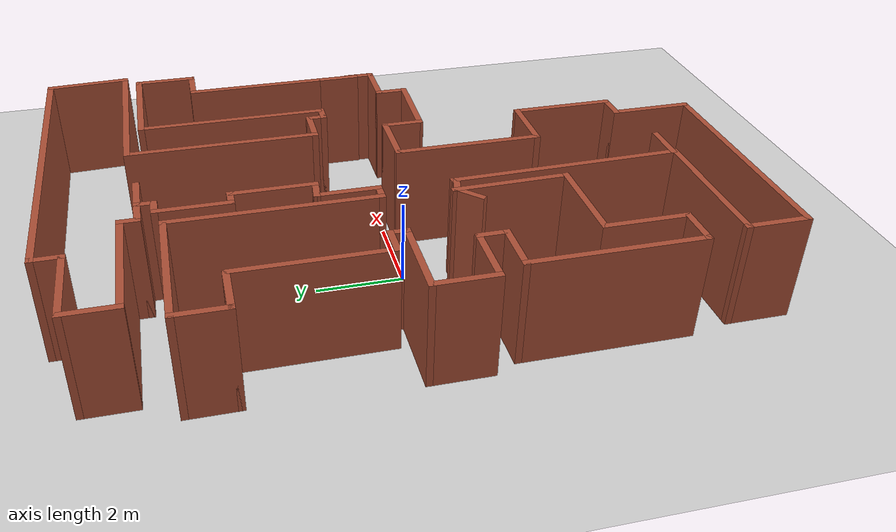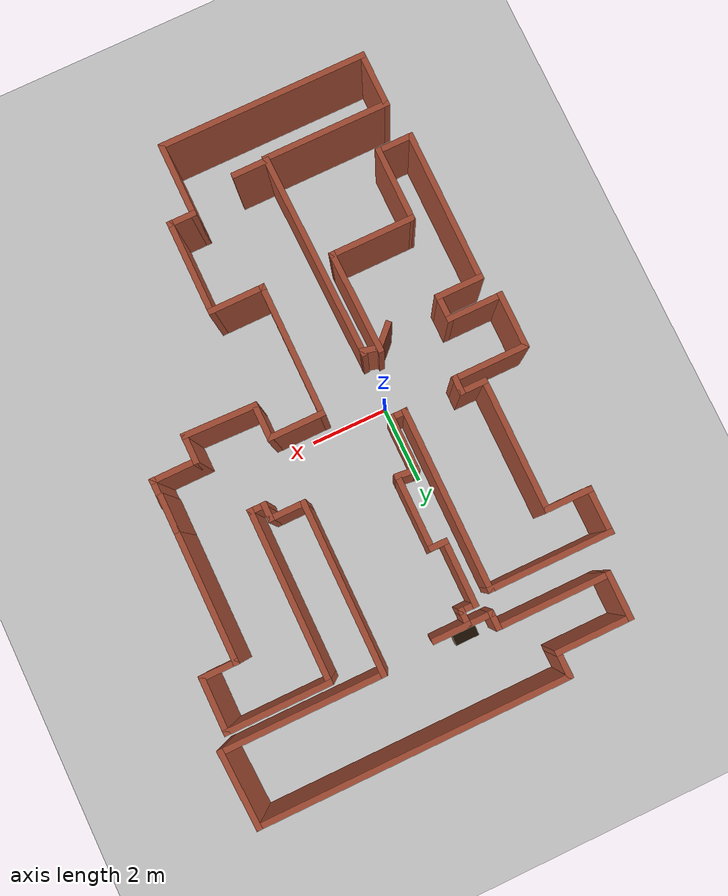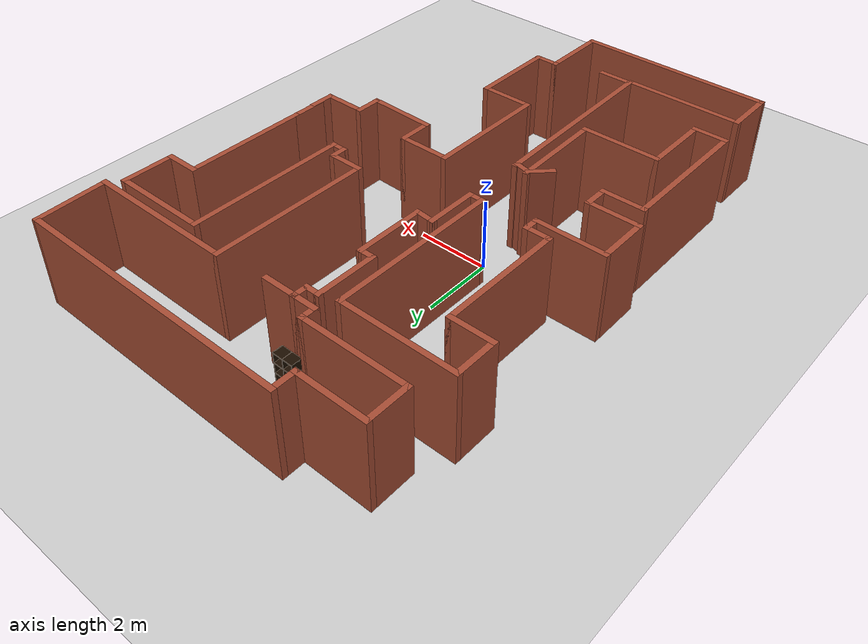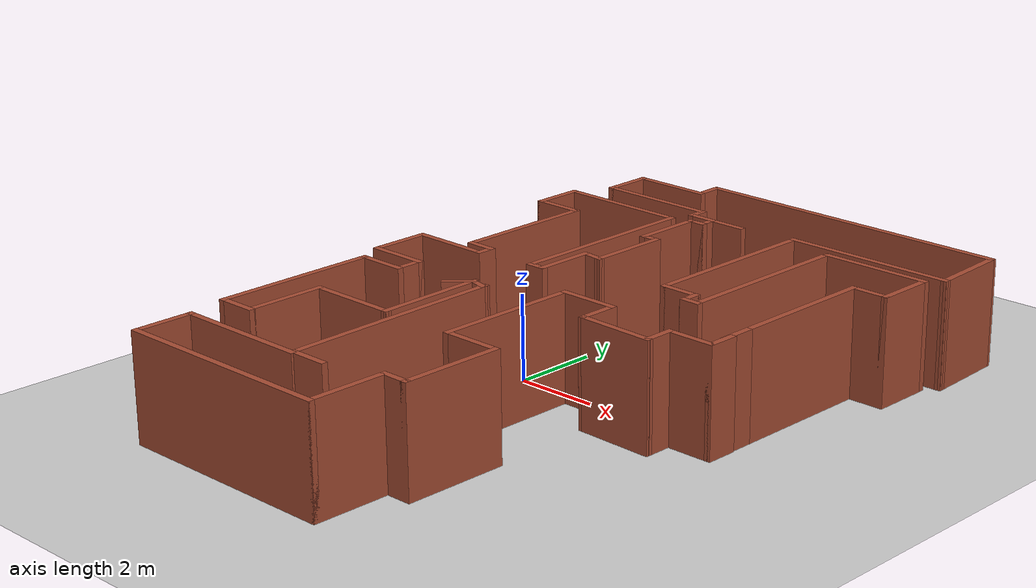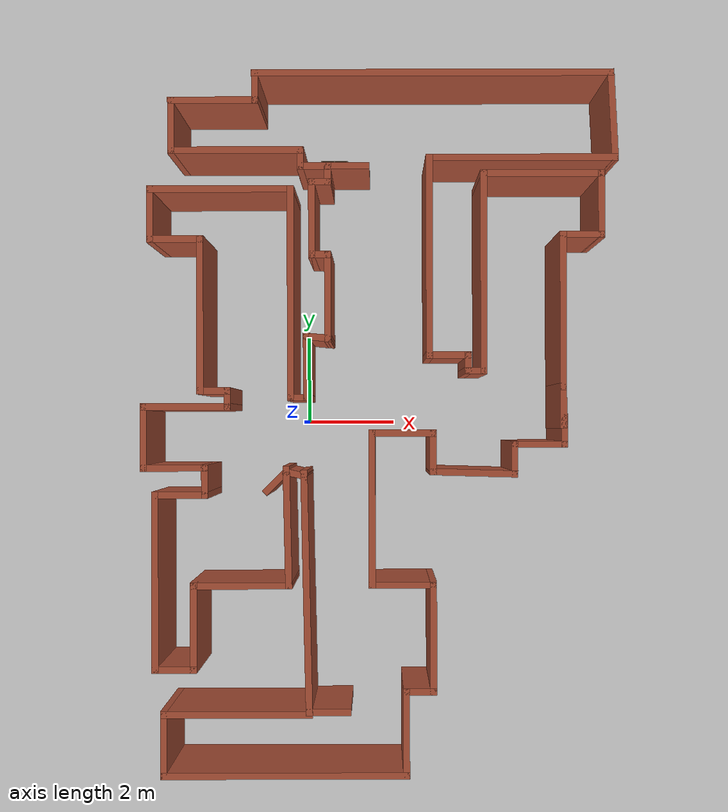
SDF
<sdf version="1.6">
 <world name="default">
  <model name="ground_plane">
   <static>1</static>
   <link name="link">
    <collision name="collision">
     <geometry><plane><normal>0 0 1</normal><size>100 100</size></plane></geometry>
     <surface>
      <contact><collide_bitmask>65535</collide_bitmask></contact>
      <friction><ode><mu>100</mu><mu2>50</mu2></ode></friction>
     </surface>
    </collision>
    <visual name="visual">
     <cast_shadows>0</cast_shadows>
     <geometry><plane><normal>0 0 1</normal><size>100 100</size></plane></geometry>
     <material>
      <script><uri>file://media/materials/scripts/gazebo.material</uri><name>Gazebo/Grey</name></script>
     </material>
    </visual>
   </link>
  </model>
  <model name="map_74">
   <pose>1.67527 -0.053097 0 0 -0 0</pose>
   <link name="Wall_0">
    <collision name="Wall_0_Collision">
     <geometry><box><size>8 0.15 2.5</size></box></geometry>
     <pose>0 0 1.25 0 -0 0</pose>
    </collision>
    <visual name="Wall_0_Visual">
     <pose>0 0 1.25 0 -0 0</pose>
     <geometry><box><size>8 0.15 2.5</size></box></geometry>
     <material>
      <script><uri>file://media/materials/scripts/gazebo.material</uri><name>Gazebo/Bricks</name></script>
      <ambient>1 1 1 1</ambient>
     </material>
     <meta><layer>0</layer></meta>
    </visual>
    <pose>1.18616 7.74572 0 0 -0 3.14159</pose>
   </link>
   <link name="Wall_1">
    <collision name="Wall_1_Collision">
     <geometry><box><size>0.75 0.15 2.5</size></box></geometry>
     <pose>0 0 1.25 0 -0 0</pose>
    </collision>
    <visual name="Wall_1_Visual">
     <pose>0 0 1.25 0 -0 0</pose>
     <geometry><box><size>0.75 0.15 2.5</size></box></geometry>
     <material>
      <script><uri>file://media/materials/scripts/gazebo.material</uri><name>Gazebo/Bricks</name></script>
      <ambient>1 1 1 1</ambient>
     </material>
     <meta><layer>0</layer></meta>
    </visual>
    <pose>-2.73884 7.44572 0 0 -0 -1.5708</pose>
   </link>
   <link name="Wall_10">
    <collision name="Wall_10_Collision">
     <geometry><box><size>0.5 0.15 2.5</size></box></geometry>
     <pose>0 0 1.25 0 -0 0</pose>
    </collision>
    <visual name="Wall_10_Visual">
     <pose>0 0 1.25 0 -0 0</pose>
     <geometry><box><size>0.5 0.15 2.5</size></box></geometry>
     <material>
      <script><uri>file://media/materials/scripts/gazebo.material</uri><name>Gazebo/Bricks</name></script>
      <ambient>1 1 1 1</ambient>
     </material>
     <meta><layer>0</layer></meta>
    </visual>
    <pose>-1.31384 5.34572 0 0 -0 3.14159</pose>
   </link>
   <link name="Wall_11">
    <collision name="Wall_11_Collision">
     <geometry><box><size>1.75 0.15 2.5</size></box></geometry>
     <pose>0 0 1.25 0 -0 0</pose>
    </collision>
    <visual name="Wall_11_Visual">
     <pose>0 0 1.25 0 -0 0</pose>
     <geometry><box><size>1.75 0.15 2.5</size></box></geometry>
     <material>
      <script><uri>file://media/materials/scripts/gazebo.material</uri><name>Gazebo/Bricks</name></script>
      <ambient>1 1 1 1</ambient>
     </material>
     <meta><layer>0</layer></meta>
    </visual>
    <pose>-1.48884 4.54572 0 0 -0 -1.5708</pose>
   </link>
   <link name="Wall_12">
    <collision name="Wall_12_Collision">
     <geometry><box><size>0.5 0.15 2.5</size></box></geometry>
     <pose>0 0 1.25 0 -0 0</pose>
    </collision>
    <visual name="Wall_12_Visual">
     <pose>0 0 1.25 0 -0 0</pose>
     <geometry><box><size>0.5 0.15 2.5</size></box></geometry>
     <material>
      <script><uri>file://media/materials/scripts/gazebo.material</uri><name>Gazebo/Bricks</name></script>
      <ambient>1 1 1 1</ambient>
     </material>
     <meta><layer>0</layer></meta>
    </visual>
    <pose>-1.31384 3.74572 0 0 -0 0</pose>
   </link>
   <link name="Wall_13">
    <collision name="Wall_13_Collision">
     <geometry><box><size>2 0.15 2.5</size></box></geometry>
     <pose>0 0 1.25 0 -0 0</pose>
    </collision>
    <visual name="Wall_13_Visual">
     <pose>0 0 1.25 0 -0 0</pose>
     <geometry><box><size>2 0.15 2.5</size></box></geometry>
     <material>
      <script><uri>file://media/materials/scripts/gazebo.material</uri><name>Gazebo/Bricks</name></script>
      <ambient>1 1 1 1</ambient>
     </material>
     <meta><layer>0</layer></meta>
    </visual>
    <pose>-1.13884 2.82072 0 0 -0 -1.5708</pose>
   </link>
   <link name="Wall_16">
    <collision name="Wall_16_Collision">
     <geometry><box><size>0.621345 0.15 2.5</size></box></geometry>
     <pose>0 0 1.25 0 -0 0</pose>
    </collision>
    <visual name="Wall_16_Visual">
     <pose>0 0 1.25 0 -0 0</pose>
     <geometry><box><size>0.621345 0.15 2.5</size></box></geometry>
     <material>
      <script><uri>file://media/materials/scripts/gazebo.material</uri><name>Gazebo/Bricks</name></script>
      <ambient>1 1 1 1</ambient>
     </material>
     <meta><layer>0</layer></meta>
    </visual>
    <pose>-1.37342 1.91847 0 0 -0 -0.096692</pose>
   </link>
   <link name="Wall_18">
    <collision name="Wall_18_Collision">
     <geometry><box><size>1.5 0.15 2.5</size></box></geometry>
     <pose>0 0 1.25 0 -0 0</pose>
    </collision>
    <visual name="Wall_18_Visual">
     <pose>0 0 1.25 0 -0 0</pose>
     <geometry><box><size>1.5 0.15 2.5</size></box></geometry>
     <material>
      <script><uri>file://media/materials/scripts/gazebo.material</uri><name>Gazebo/Bricks</name></script>
      <ambient>1 1 1 1</ambient>
     </material>
     <meta><layer>0</layer></meta>
    </visual>
    <pose>-1.60799 1.26623 0 0 -0 -1.5708</pose>
   </link>
   <link name="Wall_19">
    <collision name="Wall_19_Collision">
     <geometry><box><size>0.5 0.15 2.5</size></box></geometry>
     <pose>0 0 1.25 0 -0 0</pose>
    </collision>
    <visual name="Wall_19_Visual">
     <pose>0 0 1.25 0 -0 0</pose>
     <geometry><box><size>0.5 0.15 2.5</size></box></geometry>
     <material>
      <script><uri>file://media/materials/scripts/gazebo.material</uri><name>Gazebo/Bricks</name></script>
      <ambient>1 1 1 1</ambient>
     </material>
     <meta><layer>0</layer></meta>
    </visual>
    <pose>-1.78299 0.591226 0 0 -0 3.14159</pose>
   </link>
   <link name="Wall_2">
    <collision name="Wall_2_Collision">
     <geometry><box><size>2 0.15 2.5</size></box></geometry>
     <pose>0 0 1.25 0 -0 0</pose>
    </collision>
    <visual name="Wall_2_Visual">
     <pose>0 0 1.25 0 -0 0</pose>
     <geometry><box><size>2 0.15 2.5</size></box></geometry>
     <material>
      <script><uri>file://media/materials/scripts/gazebo.material</uri><name>Gazebo/Bricks</name></script>
      <ambient>1 1 1 1</ambient>
     </material>
     <meta><layer>0</layer></meta>
    </visual>
    <pose>-3.66384 7.14572 0 0 -0 3.14159</pose>
   </link>
   <link name="Wall_20">
    <collision name="Wall_20_Collision">
     <geometry><box><size>4.75 0.15 2.5</size></box></geometry>
     <pose>0 0 1.25 0 -0 0</pose>
    </collision>
    <visual name="Wall_20_Visual">
     <pose>0 0 1.25 0 -0 0</pose>
     <geometry><box><size>4.75 0.15 2.5</size></box></geometry>
     <material>
      <script><uri>file://media/materials/scripts/gazebo.material</uri><name>Gazebo/Bricks</name></script>
      <ambient>1 1 1 1</ambient>
     </material>
     <meta><layer>0</layer></meta>
    </visual>
    <pose>-1.95799 2.89123 0 0 -0 1.5708</pose>
   </link>
   <link name="Wall_21">
    <collision name="Wall_21_Collision">
     <geometry><box><size>3.25 0.15 2.5</size></box></geometry>
     <pose>0 0 1.25 0 -0 0</pose>
    </collision>
    <visual name="Wall_21_Visual">
     <pose>0 0 1.25 0 -0 0</pose>
     <geometry><box><size>3.25 0.15 2.5</size></box></geometry>
     <material>
      <script><uri>file://media/materials/scripts/gazebo.material</uri><name>Gazebo/Bricks</name></script>
      <ambient>1 1 1 1</ambient>
     </material>
     <meta><layer>0</layer></meta>
    </visual>
    <pose>-3.50799 5.19123 0 0 -0 3.14159</pose>
   </link>
   <link name="Wall_22">
    <collision name="Wall_22_Collision">
     <geometry><box><size>1.25 0.15 2.5</size></box></geometry>
     <pose>0 0 1.25 0 -0 0</pose>
    </collision>
    <visual name="Wall_22_Visual">
     <pose>0 0 1.25 0 -0 0</pose>
     <geometry><box><size>1.25 0.15 2.5</size></box></geometry>
     <material>
      <script><uri>file://media/materials/scripts/gazebo.material</uri><name>Gazebo/Bricks</name></script>
      <ambient>1 1 1 1</ambient>
     </material>
     <meta><layer>0</layer></meta>
    </visual>
    <pose>-5.05799 4.64123 0 0 -0 -1.5708</pose>
   </link>
   <link name="Wall_23">
    <collision name="Wall_23_Collision">
     <geometry><box><size>1.25 0.15 2.5</size></box></geometry>
     <pose>0 0 1.25 0 -0 0</pose>
    </collision>
    <visual name="Wall_23_Visual">
     <pose>0 0 1.25 0 -0 0</pose>
     <geometry><box><size>1.25 0.15 2.5</size></box></geometry>
     <material>
      <script><uri>file://media/materials/scripts/gazebo.material</uri><name>Gazebo/Bricks</name></script>
      <ambient>1 1 1 1</ambient>
     </material>
     <meta><layer>0</layer></meta>
    </visual>
    <pose>-4.50799 4.09123 0 0 -0 0</pose>
   </link>
   <link name="Wall_26">
    <collision name="Wall_26_Collision">
     <geometry><box><size>3.5 0.15 2.5</size></box></geometry>
     <pose>0 0 1.25 0 -0 0</pose>
    </collision>
    <visual name="Wall_26_Visual">
     <pose>0 0 1.25 0 -0 0</pose>
     <geometry><box><size>3.5 0.15 2.5</size></box></geometry>
     <material>
      <script><uri>file://media/materials/scripts/gazebo.material</uri><name>Gazebo/Bricks</name></script>
      <ambient>1 1 1 1</ambient>
     </material>
     <meta><layer>0</layer></meta>
    </visual>
    <pose>-3.95799 2.41623 0 0 -0 -1.5708</pose>
   </link>
   <link name="Wall_27">
    <collision name="Wall_27_Collision">
     <geometry><box><size>0.75 0.15 2.5</size></box></geometry>
     <pose>0 0 1.25 0 -0 0</pose>
    </collision>
    <visual name="Wall_27_Visual">
     <pose>0 0 1.25 0 -0 0</pose>
     <geometry><box><size>0.75 0.15 2.5</size></box></geometry>
     <material>
      <script><uri>file://media/materials/scripts/gazebo.material</uri><name>Gazebo/Bricks</name></script>
      <ambient>1 1 1 1</ambient>
     </material>
     <meta><layer>0</layer></meta>
    </visual>
    <pose>-3.65799 0.741226 0 0 -0 0</pose>
   </link>
   <link name="Wall_3">
    <collision name="Wall_3_Collision">
     <geometry><box><size>1.25 0.15 2.5</size></box></geometry>
     <pose>0 0 1.25 0 -0 0</pose>
    </collision>
    <visual name="Wall_3_Visual">
     <pose>0 0 1.25 0 -0 0</pose>
     <geometry><box><size>1.25 0.15 2.5</size></box></geometry>
     <material>
      <script><uri>file://media/materials/scripts/gazebo.material</uri><name>Gazebo/Bricks</name></script>
      <ambient>1 1 1 1</ambient>
     </material>
     <meta><layer>0</layer></meta>
    </visual>
    <pose>-4.58884 6.59572 0 0 -0 -1.5708</pose>
   </link>
   <link name="Wall_30">
    <collision name="Wall_30_Collision">
     <geometry><box><size>0.5 0.15 2.5</size></box></geometry>
     <pose>0 0 1.25 0 -0 0</pose>
    </collision>
    <visual name="Wall_30_Visual">
     <pose>0 0 1.25 0 -0 0</pose>
     <geometry><box><size>0.5 0.15 2.5</size></box></geometry>
     <material>
      <script><uri>file://media/materials/scripts/gazebo.material</uri><name>Gazebo/Bricks</name></script>
      <ambient>1 1 1 1</ambient>
     </material>
     <meta><layer>0</layer></meta>
    </visual>
    <pose>-3.35799 0.566226 0 0 -0 -1.5708</pose>
   </link>
   <link name="Wall_31">
    <collision name="Wall_31_Collision">
     <geometry><box><size>2 0.15 2.5</size></box></geometry>
     <pose>0 0 1.25 0 -0 0</pose>
    </collision>
    <visual name="Wall_31_Visual">
     <pose>0 0 1.25 0 -0 0</pose>
     <geometry><box><size>2 0.15 2.5</size></box></geometry>
     <material>
      <script><uri>file://media/materials/scripts/gazebo.material</uri><name>Gazebo/Bricks</name></script>
      <ambient>1 1 1 1</ambient>
     </material>
     <meta><layer>0</layer></meta>
    </visual>
    <pose>-4.28299 0.391226 0 0 -0 3.14159</pose>
   </link>
   <link name="Wall_32">
    <collision name="Wall_32_Collision">
     <geometry><box><size>1.5 0.15 2.5</size></box></geometry>
     <pose>0 0 1.25 0 -0 0</pose>
    </collision>
    <visual name="Wall_32_Visual">
     <pose>0 0 1.25 0 -0 0</pose>
     <geometry><box><size>1.5 0.15 2.5</size></box></geometry>
     <material>
      <script><uri>file://media/materials/scripts/gazebo.material</uri><name>Gazebo/Bricks</name></script>
      <ambient>1 1 1 1</ambient>
     </material>
     <meta><layer>0</layer></meta>
    </visual>
    <pose>-5.20799 -0.283774 0 0 -0 -1.5708</pose>
   </link>
   <link name="Wall_36">
    <collision name="Wall_36_Collision">
     <geometry><box><size>1.5 0.15 2.5</size></box></geometry>
     <pose>0 0 1.25 0 -0 0</pose>
    </collision>
    <visual name="Wall_36_Visual">
     <pose>0 0 1.25 0 -0 0</pose>
     <geometry><box><size>1.5 0.15 2.5</size></box></geometry>
     <material>
      <script><uri>file://media/materials/scripts/gazebo.material</uri><name>Gazebo/Bricks</name></script>
      <ambient>1 1 1 1</ambient>
     </material>
     <meta><layer>0</layer></meta>
    </visual>
    <pose>-4.53299 -0.958774 0 0 -0 0</pose>
   </link>
   <link name="Wall_37">
    <collision name="Wall_37_Collision">
     <geometry><box><size>0.75 0.15 2.5</size></box></geometry>
     <pose>0 0 1.25 0 -0 0</pose>
    </collision>
    <visual name="Wall_37_Visual">
     <pose>0 0 1.25 0 -0 0</pose>
     <geometry><box><size>0.75 0.15 2.5</size></box></geometry>
     <material>
      <script><uri>file://media/materials/scripts/gazebo.material</uri><name>Gazebo/Bricks</name></script>
      <ambient>1 1 1 1</ambient>
     </material>
     <meta><layer>0</layer></meta>
    </visual>
    <pose>-3.85799 -1.25877 0 0 -0 -1.5708</pose>
   </link>
   <link name="Wall_38">
    <collision name="Wall_38_Collision">
     <geometry><box><size>1.25 0.15 2.5</size></box></geometry>
     <pose>0 0 1.25 0 -0 0</pose>
    </collision>
    <visual name="Wall_38_Visual">
     <pose>0 0 1.25 0 -0 0</pose>
     <geometry><box><size>1.25 0.15 2.5</size></box></geometry>
     <material>
      <script><uri>file://media/materials/scripts/gazebo.material</uri><name>Gazebo/Bricks</name></script>
      <ambient>1 1 1 1</ambient>
     </material>
     <meta><layer>0</layer></meta>
    </visual>
    <pose>-4.40799 -1.55877 0 0 -0 3.14159</pose>
   </link>
   <link name="Wall_39">
    <collision name="Wall_39_Collision">
     <geometry><box><size>4 0.15 2.5</size></box></geometry>
     <pose>0 0 1.25 0 -0 0</pose>
    </collision>
    <visual name="Wall_39_Visual">
     <pose>0 0 1.25 0 -0 0</pose>
     <geometry><box><size>4 0.15 2.5</size></box></geometry>
     <material>
      <script><uri>file://media/materials/scripts/gazebo.material</uri><name>Gazebo/Bricks</name></script>
      <ambient>1 1 1 1</ambient>
     </material>
     <meta><layer>0</layer></meta>
    </visual>
    <pose>-4.95799 -3.48377 0 0 -0 -1.5708</pose>
   </link>
   <link name="Wall_40">
    <collision name="Wall_40_Collision">
     <geometry><box><size>1 0.15 2.5</size></box></geometry>
     <pose>0 0 1.25 0 -0 0</pose>
    </collision>
    <visual name="Wall_40_Visual">
     <pose>0 0 1.25 0 -0 0</pose>
     <geometry><box><size>1 0.15 2.5</size></box></geometry>
     <material>
      <script><uri>file://media/materials/scripts/gazebo.material</uri><name>Gazebo/Bricks</name></script>
      <ambient>1 1 1 1</ambient>
     </material>
     <meta><layer>0</layer></meta>
    </visual>
    <pose>-4.53299 -5.40877 0 0 -0 0</pose>
   </link>
   <link name="Wall_41">
    <collision name="Wall_41_Collision">
     <geometry><box><size>2 0.15 2.5</size></box></geometry>
     <pose>0 0 1.25 0 -0 0</pose>
    </collision>
    <visual name="Wall_41_Visual">
     <pose>0 0 1.25 0 -0 0</pose>
     <geometry><box><size>2 0.15 2.5</size></box></geometry>
     <material>
      <script><uri>file://media/materials/scripts/gazebo.material</uri><name>Gazebo/Bricks</name></script>
      <ambient>1 1 1 1</ambient>
     </material>
     <meta><layer>0</layer></meta>
    </visual>
    <pose>-4.10799 -4.48377 0 0 -0 1.5708</pose>
   </link>
   <link name="Wall_42">
    <collision name="Wall_42_Collision">
     <geometry><box><size>2.25 0.15 2.5</size></box></geometry>
     <pose>0 0 1.25 0 -0 0</pose>
    </collision>
    <visual name="Wall_42_Visual">
     <pose>0 0 1.25 0 -0 0</pose>
     <geometry><box><size>2.25 0.15 2.5</size></box></geometry>
     <material>
      <script><uri>file://media/materials/scripts/gazebo.material</uri><name>Gazebo/Bricks</name></script>
      <ambient>1 1 1 1</ambient>
     </material>
     <meta><layer>0</layer></meta>
    </visual>
    <pose>-3.05799 -3.55877 0 0 -0 0</pose>
   </link>
   <link name="Wall_43">
    <collision name="Wall_43_Collision">
     <geometry><box><size>2.71457 0.15 2.5</size></box></geometry>
     <pose>0 0 1.25 0 -0 0</pose>
    </collision>
    <visual name="Wall_43_Visual">
     <pose>0 0 1.25 0 -0 0</pose>
     <geometry><box><size>2.71457 0.15 2.5</size></box></geometry>
     <material>
      <script><uri>file://media/materials/scripts/gazebo.material</uri><name>Gazebo/Bricks</name></script>
      <ambient>1 1 1 1</ambient>
     </material>
     <meta><layer>0</layer></meta>
    </visual>
    <pose>-2.03474 -2.27677 0 0 -0 1.59166</pose>
   </link>
   <link name="Wall_44">
    <collision name="Wall_44_Collision">
     <geometry><box><size>0.551918 0.15 2.5</size></box></geometry>
     <pose>0 0 1.25 0 -0 0</pose>
    </collision>
    <visual name="Wall_44_Visual">
     <pose>0 0 1.25 0 -0 0</pose>
     <geometry><box><size>0.551918 0.15 2.5</size></box></geometry>
     <material>
      <script><uri>file://media/materials/scripts/gazebo.material</uri><name>Gazebo/Bricks</name></script>
      <ambient>1 1 1 1</ambient>
     </material>
     <meta><layer>0</layer></meta>
    </visual>
    <pose>-1.8657 -1.09356 0 0 -0 -0.227339</pose>
   </link>
   <link name="Wall_45">
    <collision name="Wall_45_Collision">
     <geometry><box><size>5.4116 0.15 2.5</size></box></geometry>
     <pose>0 0 1.25 0 -0 0</pose>
    </collision>
    <visual name="Wall_45_Visual">
     <pose>0 0 1.25 0 -0 0</pose>
     <geometry><box><size>5.4116 0.15 2.5</size></box></geometry>
     <material>
      <script><uri>file://media/materials/scripts/gazebo.material</uri><name>Gazebo/Bricks</name></script>
      <ambient>1 1 1 1</ambient>
     </material>
     <meta><layer>0</layer></meta>
    </visual>
    <pose>-1.61641 -3.7156 0 0 -0 -1.55046</pose>
   </link>
   <link name="Wall_46">
    <collision name="Wall_46_Collision">
     <geometry><box><size>3.35745 0.15 2.5</size></box></geometry>
     <pose>0 0 1.25 0 -0 0</pose>
    </collision>
    <visual name="Wall_46_Visual">
     <pose>0 0 1.25 0 -0 0</pose>
     <geometry><box><size>3.35745 0.15 2.5</size></box></geometry>
     <material>
      <script><uri>file://media/materials/scripts/gazebo.material</uri><name>Gazebo/Bricks</name></script>
      <ambient>1 1 1 1</ambient>
     </material>
     <meta><layer>0</layer></meta>
    </visual>
    <pose>-3.16641 -6.39936 0 0 -0 -3.14159</pose>
   </link>
   <link name="Wall_47">
    <collision name="Wall_47_Collision">
     <geometry><box><size>1.5 0.15 2.5</size></box></geometry>
     <pose>0 0 1.25 0 -0 0</pose>
    </collision>
    <visual name="Wall_47_Visual">
     <pose>0 0 1.25 0 -0 0</pose>
     <geometry><box><size>1.5 0.15 2.5</size></box></geometry>
     <material>
      <script><uri>file://media/materials/scripts/gazebo.material</uri><name>Gazebo/Bricks</name></script>
      <ambient>1 1 1 1</ambient>
     </material>
     <meta><layer>0</layer></meta>
    </visual>
    <pose>-4.76991 -7.07436 0 0 -0 -1.5708</pose>
   </link>
   <link name="Wall_48">
    <collision name="Wall_48_Collision">
     <geometry><box><size>5.5 0.15 2.5</size></box></geometry>
     <pose>0 0 1.25 0 -0 0</pose>
    </collision>
    <visual name="Wall_48_Visual">
     <pose>0 0 1.25 0 -0 0</pose>
     <geometry><box><size>5.5 0.15 2.5</size></box></geometry>
     <material>
      <script><uri>file://media/materials/scripts/gazebo.material</uri><name>Gazebo/Bricks</name></script>
      <ambient>1 1 1 1</ambient>
     </material>
     <meta><layer>0</layer></meta>
    </visual>
    <pose>-2.09491 -7.74936 0 0 -0 0</pose>
   </link>
   <link name="Wall_49">
    <collision name="Wall_49_Collision">
     <geometry><box><size>2 0.15 2.5</size></box></geometry>
     <pose>0 0 1.25 0 -0 0</pose>
    </collision>
    <visual name="Wall_49_Visual">
     <pose>0 0 1.25 0 -0 0</pose>
     <geometry><box><size>2 0.15 2.5</size></box></geometry>
     <material>
      <script><uri>file://media/materials/scripts/gazebo.material</uri><name>Gazebo/Bricks</name></script>
      <ambient>1 1 1 1</ambient>
     </material>
     <meta><layer>0</layer></meta>
    </visual>
    <pose>0.580086 -6.82436 0 0 -0 1.5708</pose>
   </link>
   <link name="Wall_50">
    <collision name="Wall_50_Collision">
     <geometry><box><size>0.75 0.15 2.5</size></box></geometry>
     <pose>0 0 1.25 0 -0 0</pose>
    </collision>
    <visual name="Wall_50_Visual">
     <pose>0 0 1.25 0 -0 0</pose>
     <geometry><box><size>0.75 0.15 2.5</size></box></geometry>
     <material>
      <script><uri>file://media/materials/scripts/gazebo.material</uri><name>Gazebo/Bricks</name></script>
      <ambient>1 1 1 1</ambient>
     </material>
     <meta><layer>0</layer></meta>
    </visual>
    <pose>0.880086 -5.89936 0 0 -0 0</pose>
   </link>
   <link name="Wall_51">
    <collision name="Wall_51_Collision">
     <geometry><box><size>2.5 0.15 2.5</size></box></geometry>
     <pose>0 0 1.25 0 -0 0</pose>
    </collision>
    <visual name="Wall_51_Visual">
     <pose>0 0 1.25 0 -0 0</pose>
     <geometry><box><size>2.5 0.15 2.5</size></box></geometry>
     <material>
      <script><uri>file://media/materials/scripts/gazebo.material</uri><name>Gazebo/Bricks</name></script>
      <ambient>1 1 1 1</ambient>
     </material>
     <meta><layer>0</layer></meta>
    </visual>
    <pose>1.18009 -4.72436 0 0 -0 1.5708</pose>
   </link>
   <link name="Wall_52">
    <collision name="Wall_52_Collision">
     <geometry><box><size>1.5 0.15 2.5</size></box></geometry>
     <pose>0 0 1.25 0 -0 0</pose>
    </collision>
    <visual name="Wall_52_Visual">
     <pose>0 0 1.25 0 -0 0</pose>
     <geometry><box><size>1.5 0.15 2.5</size></box></geometry>
     <material>
      <script><uri>file://media/materials/scripts/gazebo.material</uri><name>Gazebo/Bricks</name></script>
      <ambient>1 1 1 1</ambient>
     </material>
     <meta><layer>0</layer></meta>
    </visual>
    <pose>0.505086 -3.54936 0 0 -0 3.14159</pose>
   </link>
   <link name="Wall_53">
    <collision name="Wall_53_Collision">
     <geometry><box><size>3.5 0.15 2.5</size></box></geometry>
     <pose>0 0 1.25 0 -0 0</pose>
    </collision>
    <visual name="Wall_53_Visual">
     <pose>0 0 1.25 0 -0 0</pose>
     <geometry><box><size>3.5 0.15 2.5</size></box></geometry>
     <material>
      <script><uri>file://media/materials/scripts/gazebo.material</uri><name>Gazebo/Bricks</name></script>
      <ambient>1 1 1 1</ambient>
     </material>
     <meta><layer>0</layer></meta>
    </visual>
    <pose>-0.169914 -1.87436 0 0 -0 1.5708</pose>
   </link>
   <link name="Wall_54">
    <collision name="Wall_54_Collision">
     <geometry><box><size>1.5 0.15 2.5</size></box></geometry>
     <pose>0 0 1.25 0 -0 0</pose>
    </collision>
    <visual name="Wall_54_Visual">
     <pose>0 0 1.25 0 -0 0</pose>
     <geometry><box><size>1.5 0.15 2.5</size></box></geometry>
     <material>
      <script><uri>file://media/materials/scripts/gazebo.material</uri><name>Gazebo/Bricks</name></script>
      <ambient>1 1 1 1</ambient>
     </material>
     <meta><layer>0</layer></meta>
    </visual>
    <pose>0.505086 -0.199361 0 0 -0 0</pose>
   </link>
   <link name="Wall_55">
    <collision name="Wall_55_Collision">
     <geometry><box><size>1 0.15 2.5</size></box></geometry>
     <pose>0 0 1.25 0 -0 0</pose>
    </collision>
    <visual name="Wall_55_Visual">
     <pose>0 0 1.25 0 -0 0</pose>
     <geometry><box><size>1 0.15 2.5</size></box></geometry>
     <material>
      <script><uri>file://media/materials/scripts/gazebo.material</uri><name>Gazebo/Bricks</name></script>
      <ambient>1 1 1 1</ambient>
     </material>
     <meta><layer>0</layer></meta>
    </visual>
    <pose>1.18009 -0.624361 0 0 -0 -1.5708</pose>
   </link>
   <link name="Wall_59">
    <collision name="Wall_59_Collision">
     <geometry><box><size>1.94729 0.15 2.5</size></box></geometry>
     <pose>0 0 1.25 0 -0 0</pose>
    </collision>
    <visual name="Wall_59_Visual">
     <pose>0 0 1.25 0 -0 0</pose>
     <geometry><box><size>1.94729 0.15 2.5</size></box></geometry>
     <material>
      <script><uri>file://media/materials/scripts/gazebo.material</uri><name>Gazebo/Bricks</name></script>
      <ambient>1 1 1 1</ambient>
     </material>
     <meta><layer>0</layer></meta>
    </visual>
    <pose>2.07834 -1.07611 0 0 -0 -0.029773</pose>
   </link>
   <link name="Wall_6">
    <collision name="Wall_6_Collision">
     <geometry><box><size>3 0.15 2.5</size></box></geometry>
     <pose>0 0 1.25 0 -0 0</pose>
    </collision>
    <visual name="Wall_6_Visual">
     <pose>0 0 1.25 0 -0 0</pose>
     <geometry><box><size>3 0.15 2.5</size></box></geometry>
     <material>
      <script><uri>file://media/materials/scripts/gazebo.material</uri><name>Gazebo/Bricks</name></script>
      <ambient>1 1 1 1</ambient>
     </material>
     <meta><layer>0</layer></meta>
    </visual>
    <pose>-3.16384 6.04572 0 0 -0 0</pose>
   </link>
   <link name="Wall_60">
    <collision name="Wall_60_Collision">
     <geometry><box><size>0.75 0.15 2.5</size></box></geometry>
     <pose>0 0 1.25 0 -0 0</pose>
    </collision>
    <visual name="Wall_60_Visual">
     <pose>0 0 1.25 0 -0 0</pose>
     <geometry><box><size>0.75 0.15 2.5</size></box></geometry>
     <material>
      <script><uri>file://media/materials/scripts/gazebo.material</uri><name>Gazebo/Bricks</name></script>
      <ambient>1 1 1 1</ambient>
     </material>
     <meta><layer>0</layer></meta>
    </visual>
    <pose>2.97658 -0.749361 0 0 -0 1.5708</pose>
   </link>
   <link name="Wall_63">
    <collision name="Wall_63_Collision">
     <geometry><box><size>1 0.15 2.5</size></box></geometry>
     <pose>0 0 1.25 0 -0 0</pose>
    </collision>
    <visual name="Wall_63_Visual">
     <pose>0 0 1.25 0 -0 0</pose>
     <geometry><box><size>1 0.15 2.5</size></box></geometry>
     <material>
      <script><uri>file://media/materials/scripts/gazebo.material</uri><name>Gazebo/Bricks</name></script>
      <ambient>1 1 1 1</ambient>
     </material>
     <meta><layer>0</layer></meta>
    </visual>
    <pose>4.05435 0.399903 0 0 -0 1.5708</pose>
   </link>
   <link name="Wall_64">
    <collision name="Wall_64_Collision">
     <geometry><box><size>3.5 0.15 2.5</size></box></geometry>
     <pose>0 0 1.25 0 -0 0</pose>
    </collision>
    <visual name="Wall_64_Visual">
     <pose>0 0 1.25 0 -0 0</pose>
     <geometry><box><size>3.5 0.15 2.5</size></box></geometry>
     <material>
      <script><uri>file://media/materials/scripts/gazebo.material</uri><name>Gazebo/Bricks</name></script>
      <ambient>1 1 1 1</ambient>
     </material>
     <meta><layer>0</layer></meta>
    </visual>
    <pose>4.05435 2.4999 0 0 -0 1.5708</pose>
   </link>
   <link name="Wall_65">
    <collision name="Wall_65_Collision">
     <geometry><box><size>1 0.15 2.5</size></box></geometry>
     <pose>0 0 1.25 0 -0 0</pose>
    </collision>
    <visual name="Wall_65_Visual">
     <pose>0 0 1.25 0 -0 0</pose>
     <geometry><box><size>1 0.15 2.5</size></box></geometry>
     <material>
      <script><uri>file://media/materials/scripts/gazebo.material</uri><name>Gazebo/Bricks</name></script>
      <ambient>1 1 1 1</ambient>
     </material>
     <meta><layer>0</layer></meta>
    </visual>
    <pose>4.47935 4.1749 0 0 -0 0</pose>
   </link>
   <link name="Wall_66">
    <collision name="Wall_66_Collision">
     <geometry><box><size>1.5 0.15 2.5</size></box></geometry>
     <pose>0 0 1.25 0 -0 0</pose>
    </collision>
    <visual name="Wall_66_Visual">
     <pose>0 0 1.25 0 -0 0</pose>
     <geometry><box><size>1.5 0.15 2.5</size></box></geometry>
     <material>
      <script><uri>file://media/materials/scripts/gazebo.material</uri><name>Gazebo/Bricks</name></script>
      <ambient>1 1 1 1</ambient>
     </material>
     <meta><layer>0</layer></meta>
    </visual>
    <pose>4.90435 4.8499 0 0 -0 1.5708</pose>
   </link>
   <link name="Wall_67">
    <collision name="Wall_67_Collision">
     <geometry><box><size>2.75 0.15 2.5</size></box></geometry>
     <pose>0 0 1.25 0 -0 0</pose>
    </collision>
    <visual name="Wall_67_Visual">
     <pose>0 0 1.25 0 -0 0</pose>
     <geometry><box><size>2.75 0.15 2.5</size></box></geometry>
     <material>
      <script><uri>file://media/materials/scripts/gazebo.material</uri><name>Gazebo/Bricks</name></script>
      <ambient>1 1 1 1</ambient>
     </material>
     <meta><layer>0</layer></meta>
    </visual>
    <pose>3.60435 5.5249 0 0 -0 3.14159</pose>
   </link>
   <link name="Wall_68">
    <collision name="Wall_68_Collision">
     <geometry><box><size>4.5 0.15 2.5</size></box></geometry>
     <pose>0 0 1.25 0 -0 0</pose>
    </collision>
    <visual name="Wall_68_Visual">
     <pose>0 0 1.25 0 -0 0</pose>
     <geometry><box><size>4.5 0.15 2.5</size></box></geometry>
     <material>
      <script><uri>file://media/materials/scripts/gazebo.material</uri><name>Gazebo/Bricks</name></script>
      <ambient>1 1 1 1</ambient>
     </material>
     <meta><layer>0</layer></meta>
    </visual>
    <pose>2.30435 3.3499 0 0 -0 -1.5708</pose>
   </link>
   <link name="Wall_69">
    <collision name="Wall_69_Collision">
     <geometry><box><size>0.5 0.15 2.5</size></box></geometry>
     <pose>0 0 1.25 0 -0 0</pose>
    </collision>
    <visual name="Wall_69_Visual">
     <pose>0 0 1.25 0 -0 0</pose>
     <geometry><box><size>0.5 0.15 2.5</size></box></geometry>
     <material>
      <script><uri>file://media/materials/scripts/gazebo.material</uri><name>Gazebo/Bricks</name></script>
      <ambient>1 1 1 1</ambient>
     </material>
     <meta><layer>0</layer></meta>
    </visual>
    <pose>2.12935 1.1749 0 0 -0 3.14159</pose>
   </link>
   <link name="Wall_7">
    <collision name="Wall_7_Collision">
     <geometry><box><size>0.5 0.15 2.5</size></box></geometry>
     <pose>0 0 1.25 0 -0 0</pose>
    </collision>
    <visual name="Wall_7_Visual">
     <pose>0 0 1.25 0 -0 0</pose>
     <geometry><box><size>0.5 0.15 2.5</size></box></geometry>
     <material>
      <script><uri>file://media/materials/scripts/gazebo.material</uri><name>Gazebo/Bricks</name></script>
      <ambient>1 1 1 1</ambient>
     </material>
     <meta><layer>0</layer></meta>
    </visual>
    <pose>-1.73884 5.87072 0 0 -0 -1.5708</pose>
   </link>
   <link name="Wall_70">
    <collision name="Wall_70_Collision">
     <geometry><box><size>0.5 0.15 2.5</size></box></geometry>
     <pose>0 0 1.25 0 -0 0</pose>
    </collision>
    <visual name="Wall_70_Visual">
     <pose>0 0 1.25 0 -0 0</pose>
     <geometry><box><size>0.5 0.15 2.5</size></box></geometry>
     <material>
      <script><uri>file://media/materials/scripts/gazebo.material</uri><name>Gazebo/Bricks</name></script>
      <ambient>1 1 1 1</ambient>
     </material>
     <meta><layer>0</layer></meta>
    </visual>
    <pose>1.95435 1.3499 0 0 -0 1.5708</pose>
   </link>
   <link name="Wall_71">
    <collision name="Wall_71_Collision">
     <geometry><box><size>1 0.15 2.5</size></box></geometry>
     <pose>0 0 1.25 0 -0 0</pose>
    </collision>
    <visual name="Wall_71_Visual">
     <pose>0 0 1.25 0 -0 0</pose>
     <geometry><box><size>1 0.15 2.5</size></box></geometry>
     <material>
      <script><uri>file://media/materials/scripts/gazebo.material</uri><name>Gazebo/Bricks</name></script>
      <ambient>1 1 1 1</ambient>
     </material>
     <meta><layer>0</layer></meta>
    </visual>
    <pose>1.52935 1.5249 0 0 -0 3.14159</pose>
   </link>
   <link name="Wall_72">
    <collision name="Wall_72_Collision">
     <geometry><box><size>4.5 0.15 2.5</size></box></geometry>
     <pose>0 0 1.25 0 -0 0</pose>
    </collision>
    <visual name="Wall_72_Visual">
     <pose>0 0 1.25 0 -0 0</pose>
     <geometry><box><size>4.5 0.15 2.5</size></box></geometry>
     <material>
      <script><uri>file://media/materials/scripts/gazebo.material</uri><name>Gazebo/Bricks</name></script>
      <ambient>1 1 1 1</ambient>
     </material>
     <meta><layer>0</layer></meta>
    </visual>
    <pose>1.10435 3.6999 0 0 -0 1.5708</pose>
   </link>
   <link name="Wall_73">
    <collision name="Wall_73_Collision">
     <geometry><box><size>4.25 0.15 2.5</size></box></geometry>
     <pose>0 0 1.25 0 -0 0</pose>
    </collision>
    <visual name="Wall_73_Visual">
     <pose>0 0 1.25 0 -0 0</pose>
     <geometry><box><size>4.25 0.15 2.5</size></box></geometry>
     <material>
      <script><uri>file://media/materials/scripts/gazebo.material</uri><name>Gazebo/Bricks</name></script>
      <ambient>1 1 1 1</ambient>
     </material>
     <meta><layer>0</layer></meta>
    </visual>
    <pose>3.15435 5.8749 0 0 -0 0</pose>
   </link>
   <link name="Wall_74">
    <collision name="Wall_74_Collision">
     <geometry><box><size>2.02314 0.15 2.5</size></box></geometry>
     <pose>0 0 1.25 0 -0 0</pose>
    </collision>
    <visual name="Wall_74_Visual">
     <pose>0 0 1.25 0 -0 0</pose>
     <geometry><box><size>2.02314 0.15 2.5</size></box></geometry>
     <material>
      <script><uri>file://media/materials/scripts/gazebo.material</uri><name>Gazebo/Bricks</name></script>
      <ambient>1 1 1 1</ambient>
     </material>
     <meta><layer>0</layer></meta>
    </visual>
    <pose>5.15775 6.81031 0 0 -0 1.62057</pose>
   </link>
   <link name="Wall_76">
    <collision name="Wall_76_Collision">
     <geometry><box><size>1 0.15 2.5</size></box></geometry>
     <pose>0 0 1.25 0 -0 0</pose>
    </collision>
    <visual name="Wall_76_Visual">
     <pose>0 0 1.25 0 -0 0</pose>
     <geometry><box><size>1 0.15 2.5</size></box></geometry>
     <material>
      <script><uri>file://media/materials/scripts/gazebo.material</uri><name>Gazebo/Bricks</name></script>
      <ambient>1 1 1 1</ambient>
     </material>
     <meta><layer>0</layer></meta>
    </visual>
    <pose>-1.13791 -6.34586 0 0 -0 0</pose>
   </link>
   <link name="Wall_78">
    <collision name="Wall_78_Collision">
     <geometry><box><size>0.75 0.15 2.5</size></box></geometry>
     <pose>0 0 1.25 0 -0 0</pose>
    </collision>
    <visual name="Wall_78_Visual">
     <pose>0 0 1.25 0 -0 0</pose>
     <geometry><box><size>0.75 0.15 2.5</size></box></geometry>
     <material>
      <script><uri>file://media/materials/scripts/gazebo.material</uri><name>Gazebo/Bricks</name></script>
      <ambient>1 1 1 1</ambient>
     </material>
     <meta><layer>0</layer></meta>
    </visual>
    <pose>-2.27362 -1.2604 0 0 -0 -2.35619</pose>
   </link>
   <link name="Wall_8">
    <collision name="Wall_8_Collision">
     <geometry><box><size>0.75 0.15 2.5</size></box></geometry>
     <pose>0 0 1.25 0 -0 0</pose>
    </collision>
    <visual name="Wall_8_Visual">
     <pose>0 0 1.25 0 -0 0</pose>
     <geometry><box><size>0.75 0.15 2.5</size></box></geometry>
     <material>
      <script><uri>file://media/materials/scripts/gazebo.material</uri><name>Gazebo/Bricks</name></script>
      <ambient>1 1 1 1</ambient>
     </material>
     <meta><layer>0</layer></meta>
    </visual>
    <pose>-1.43884 5.69572 0 0 -0 0</pose>
   </link>
   <link name="Wall_80">
    <collision name="Wall_80_Collision">
     <geometry><box><size>1.25 0.15 2.5</size></box></geometry>
     <pose>0 0 1.25 0 -0 0</pose>
    </collision>
    <visual name="Wall_80_Visual">
     <pose>0 0 1.25 0 -0 0</pose>
     <geometry><box><size>1.25 0.15 2.5</size></box></geometry>
     <material>
      <script><uri>file://media/materials/scripts/gazebo.material</uri><name>Gazebo/Bricks</name></script>
      <ambient>1 1 1 1</ambient>
     </material>
     <meta><layer>0</layer></meta>
    </visual>
    <pose>3.52658 -0.449361 0 0 -0 0</pose>
   </link>
   <link name="Wall_81">
    <collision name="Wall_81_Collision">
     <geometry><box><size>0.75 0.15 2.5</size></box></geometry>
     <pose>0 0 1.25 0 -0 0</pose>
    </collision>
    <visual name="Wall_81_Visual">
     <pose>0 0 1.25 0 -0 0</pose>
     <geometry><box><size>0.75 0.15 2.5</size></box></geometry>
     <material>
      <script><uri>file://media/materials/scripts/gazebo.material</uri><name>Gazebo/Bricks</name></script>
      <ambient>1 1 1 1</ambient>
     </material>
     <meta><layer>0</layer></meta>
    </visual>
    <pose>4.07658 -0.149361 0 0 -0 1.5708</pose>
   </link>
   <link name="Wall_83">
    <collision name="Wall_83_Collision">
     <geometry><box><size>1 0.15 2.5</size></box></geometry>
     <pose>0 0 1.25 0 -0 0</pose>
    </collision>
    <visual name="Wall_83_Visual">
     <pose>0 0 1.25 0 -0 0</pose>
     <geometry><box><size>1 0.15 2.5</size></box></geometry>
     <material>
      <script><uri>file://media/materials/scripts/gazebo.material</uri><name>Gazebo/Bricks</name></script>
      <ambient>1 1 1 1</ambient>
     </material>
     <meta><layer>0</layer></meta>
    </visual>
    <pose>-0.713844 5.69572 0 0 -0 0</pose>
   </link>
   <link name="Wall_9">
    <collision name="Wall_9_Collision">
     <geometry><box><size>0.5 0.15 2.5</size></box></geometry>
     <pose>0 0 1.25 0 -0 0</pose>
    </collision>
    <visual name="Wall_9_Visual">
     <pose>0 0 1.25 0 -0 0</pose>
     <geometry><box><size>0.5 0.15 2.5</size></box></geometry>
     <material>
      <script><uri>file://media/materials/scripts/gazebo.material</uri><name>Gazebo/Bricks</name></script>
      <ambient>1 1 1 1</ambient>
     </material>
     <meta><layer>0</layer></meta>
    </visual>
    <pose>-1.13884 5.52072 0 0 -0 -1.5708</pose>
   </link>
   <static>1</static>
  </model>
  <model name="6_Cube_StorageE_3">
   <link name="Wall_0">
    <pose>0 0 0.01 0 -0 0</pose>
    <inertial>
     <mass>1.6201</mass>
     <inertia><ixx>0.0119</ixx><iyy>0.0631</iyy><izz>0.0513</izz><ixy>0</ixy><ixz>0</ixz><iyz>0</iyz></inertia>
    </inertial>
    <collision name="Wall_0_Collision"><geometry><box><size>0.616 0.296 0.02</size></box></geometry></collision>
    <visual name="Wall_0_Visual">
     <geometry><box><size>0.616 0.296 0.02</size></box></geometry>
     <material>
      <script><uri>file://media/materials/scripts/gazebo.material</uri><name>Gazebo/Grey</name></script>
      <ambient>0.105882 0.0509804 0 1</ambient>
     </material>
    </visual>
   </link>
   <joint name="0_2" type="fixed">
    <pose>-0.308 0 0 0 -0 0</pose>
    <parent>Wall_2</parent>
    <child>Wall_0</child>
    <axis>
     <xyz>1 0 0</xyz>
     <use_parent_model_frame>0</use_parent_model_frame>
     <limit><lower>-1e+16</lower><upper>1e+16</upper></limit>
    </axis>
   </joint>
   <joint name="0_12" type="fixed">
    <parent>Wall_12</parent>
    <child>Wall_0</child>
    <axis>
     <xyz>0 0 1</xyz>
     <use_parent_model_frame>0</use_parent_model_frame>
     <limit><lower>-1e+16</lower><upper>1e+16</upper></limit>
    </axis>
   </joint>
   <joint name="0_4" type="fixed">
    <pose>0.308 0 0 0 -0 0</pose>
    <parent>Wall_4</parent>
    <child>Wall_0</child>
    <axis>
     <xyz>1 0 0</xyz>
     <use_parent_model_frame>0</use_parent_model_frame>
     <limit><lower>-1e+16</lower><upper>1e+16</upper></limit>
    </axis>
   </joint>
   <link name="Wall_10">
    <pose>0 0 0.61 0 -0 0</pose>
    <inertial>
     <mass>1.6201</mass>
     <inertia><ixx>0.0119</ixx><iyy>0.0631</iyy><izz>0.0513</izz><ixy>0</ixy><ixz>0</ixz><iyz>0</iyz></inertia>
    </inertial>
    <collision name="Wall_10_Collision"><geometry><box><size>0.616 0.296 0.02</size></box></geometry></collision>
    <visual name="Wall_10_Visual">
     <geometry><box><size>0.616 0.296 0.02</size></box></geometry>
     <material>
      <script><uri>file://media/materials/scripts/gazebo.material</uri><name>Gazebo/Grey</name></script>
      <ambient>0.105882 0.0509804 0 1</ambient>
     </material>
    </visual>
   </link>
   <joint name="10_2" type="fixed">
    <pose>-0.308 0 0 0 -0 0</pose>
    <parent>Wall_2</parent>
    <child>Wall_10</child>
    <axis>
     <xyz>1 0 0</xyz>
     <use_parent_model_frame>0</use_parent_model_frame>
     <limit><lower>-1e+16</lower><upper>1e+16</upper></limit>
    </axis>
   </joint>
   <joint name="10_12" type="fixed">
    <parent>Wall_12</parent>
    <child>Wall_10</child>
    <axis>
     <xyz>0 0 1</xyz>
     <use_parent_model_frame>0</use_parent_model_frame>
     <limit><lower>-1e+16</lower><upper>1e+16</upper></limit>
    </axis>
   </joint>
   <joint name="10_4" type="fixed">
    <pose>0.308 0 0 0 -0 0</pose>
    <parent>Wall_4</parent>
    <child>Wall_10</child>
    <axis>
     <xyz>1 0 0</xyz>
     <use_parent_model_frame>0</use_parent_model_frame>
     <limit><lower>-1e+16</lower><upper>1e+16</upper></limit>
    </axis>
   </joint>
   <link name="Wall_12">
    <pose>0 0 0.4575 0 -0 0</pose>
    <inertial>
     <mass>2.4065</mass>
     <inertia><ixx>0.0177</ixx><iyy>0.1855</iyy><izz>0.168</izz><ixy>0</ixy><ixz>0</ixz><iyz>0</iyz></inertia>
    </inertial>
    <collision name="Wall_12_Collision"><geometry><box><size>0.02 0.296 0.915</size></box></geometry></collision>
    <visual name="Wall_12_Visual">
     <geometry><box><size>0.02 0.296 0.915</size></box></geometry>
     <material>
      <script><uri>file://media/materials/scripts/gazebo.material</uri><name>Gazebo/Grey</name></script>
      <ambient>0.105882 0.0509804 0 1</ambient>
     </material>
    </visual>
   </link>
   <link name="Wall_2">
    <pose>-0.298 0 0.4575 0 -0 0</pose>
    <inertial>
     <mass>2.4065</mass>
     <inertia><ixx>0.0177</ixx><iyy>0.1855</iyy><izz>0.168</izz><ixy>0</ixy><ixz>0</ixz><iyz>0</iyz></inertia>
    </inertial>
    <collision name="Wall_2_Collision"><geometry><box><size>0.02 0.296 0.915</size></box></geometry></collision>
    <visual name="Wall_2_Visual">
     <geometry><box><size>0.02 0.296 0.915</size></box></geometry>
     <material>
      <script><uri>file://media/materials/scripts/gazebo.material</uri><name>Gazebo/Grey</name></script>
      <ambient>0.105882 0.0509804 0 1</ambient>
     </material>
    </visual>
   </link>
   <link name="Wall_4">
    <pose>0.298 0 0.4575 0 -0 0</pose>
    <inertial>
     <mass>2.4065</mass>
     <inertia><ixx>0.0177</ixx><iyy>0.1855</iyy><izz>0.168</izz><ixy>0</ixy><ixz>0</ixz><iyz>0</iyz></inertia>
    </inertial>
    <collision name="Wall_4_Collision"><geometry><box><size>0.02 0.296 0.915</size></box></geometry></collision>
    <visual name="Wall_4_Visual">
     <geometry><box><size>0.02 0.296 0.915</size></box></geometry>
     <material>
      <script><uri>file://media/materials/scripts/gazebo.material</uri><name>Gazebo/Grey</name></script>
      <ambient>0.105882 0.0509804 0 1</ambient>
     </material>
    </visual>
   </link>
   <link name="Wall_6">
    <pose>0 0 0.905 0 -0 0</pose>
    <inertial>
     <mass>1.6201</mass>
     <inertia><ixx>0.0119</ixx><iyy>0.0631</iyy><izz>0.0513</izz><ixy>0</ixy><ixz>0</ixz><iyz>0</iyz></inertia>
    </inertial>
    <collision name="Wall_6_Collision"><geometry><box><size>0.616 0.296 0.02</size></box></geometry></collision>
    <visual name="Wall_6_Visual">
     <geometry><box><size>0.616 0.296 0.02</size></box></geometry>
     <material>
      <script><uri>file://media/materials/scripts/gazebo.material</uri><name>Gazebo/Grey</name></script>
      <ambient>0.105882 0.0509804 0 1</ambient>
     </material>
    </visual>
   </link>
   <joint name="6_2" type="fixed">
    <pose>-0.308 0 0 0 -0 0</pose>
    <parent>Wall_2</parent>
    <child>Wall_6</child>
    <axis>
     <xyz>2 0 0</xyz>
     <use_parent_model_frame>0</use_parent_model_frame>
     <limit><lower>-1e+16</lower><upper>1e+16</upper></limit>
    </axis>
   </joint>
   <joint name="6_12" type="fixed">
    <parent>Wall_12</parent>
    <child>Wall_6</child>
    <axis>
     <xyz>0 0 1</xyz>
     <use_parent_model_frame>0</use_parent_model_frame>
     <limit><lower>-1e+16</lower><upper>1e+16</upper></limit>
    </axis>
   </joint>
   <joint name="6_4" type="fixed">
    <pose>0.308 0 0 0 -0 0</pose>
    <parent>Wall_4</parent>
    <child>Wall_6</child>
    <axis>
     <xyz>1 0 0</xyz>
     <use_parent_model_frame>0</use_parent_model_frame>
     <limit><lower>-1e+16</lower><upper>1e+16</upper></limit>
    </axis>
   </joint>
   <link name="Wall_8">
    <pose>0 0 0.305 0 -0 0</pose>
    <inertial>
     <mass>1.6201</mass>
     <inertia><ixx>0.0119</ixx><iyy>0.0631</iyy><izz>0.0513</izz><ixy>0</ixy><ixz>0</ixz><iyz>0</iyz></inertia>
    </inertial>
    <collision name="Wall_8_Collision"><geometry><box><size>0.616 0.296 0.02</size></box></geometry></collision>
    <visual name="Wall_8_Visual">
     <geometry><box><size>0.616 0.296 0.02</size></box></geometry>
     <material>
      <script><uri>file://media/materials/scripts/gazebo.material</uri><name>Gazebo/Grey</name></script>
      <ambient>0.105882 0.0509804 0 1</ambient>
     </material>
    </visual>
   </link>
   <joint name="8_2" type="fixed">
    <pose>-0.308 0 0 0 -0 0</pose>
    <parent>Wall_2</parent>
    <child>Wall_8</child>
    <axis>
     <xyz>1 0 0</xyz>
     <use_parent_model_frame>0</use_parent_model_frame>
     <limit><lower>-1e+16</lower><upper>1e+16</upper></limit>
    </axis>
   </joint>
   <joint name="8_12" type="fixed">
    <parent>Wall_12</parent>
    <child>Wall_8</child>
    <axis>
     <xyz>0 0 1</xyz>
     <use_parent_model_frame>0</use_parent_model_frame>
     <limit><lower>-1e+16</lower><upper>1e+16</upper></limit>
    </axis>
   </joint>
   <joint name="8_4" type="fixed">
    <pose>0.308 0 0 0 -0 0</pose>
    <parent>Wall_4</parent>
    <child>Wall_8</child>
    <axis>
     <xyz>1 0 0</xyz>
     <use_parent_model_frame>0</use_parent_model_frame>
     <limit><lower>-1e+16</lower><upper>1e+16</upper></limit>
    </axis>
   </joint>
   <static>1</static>
   <pose>0.640914 5.92332 0 0 -0 0</pose>
  </model>
 </world>
</sdf>
